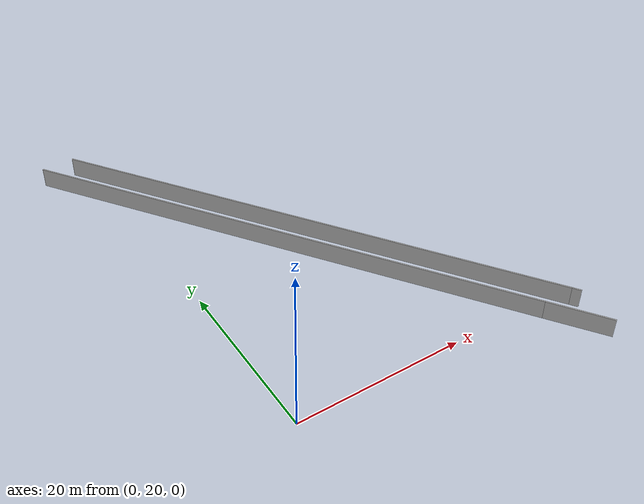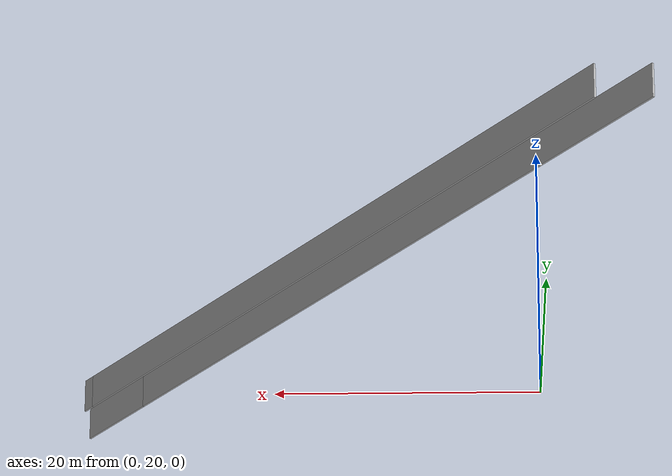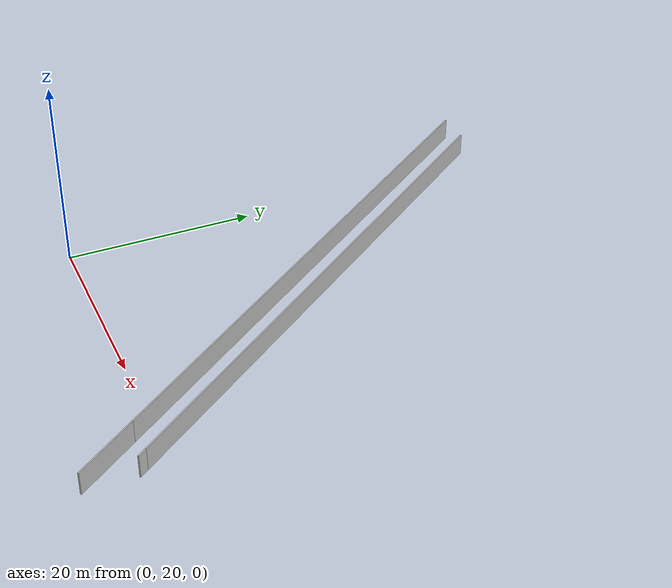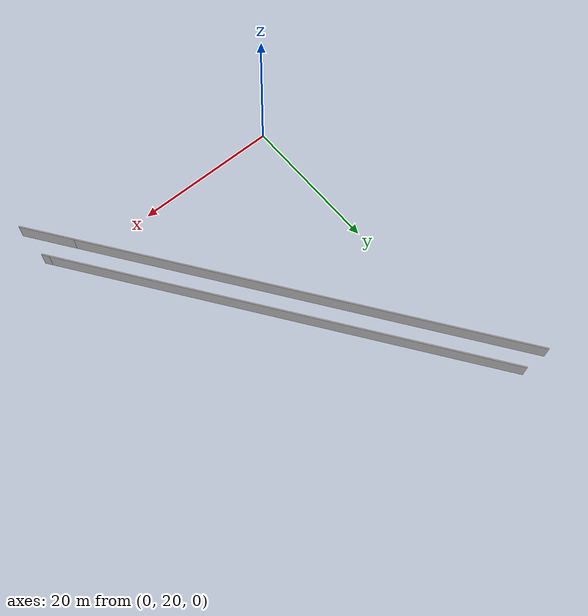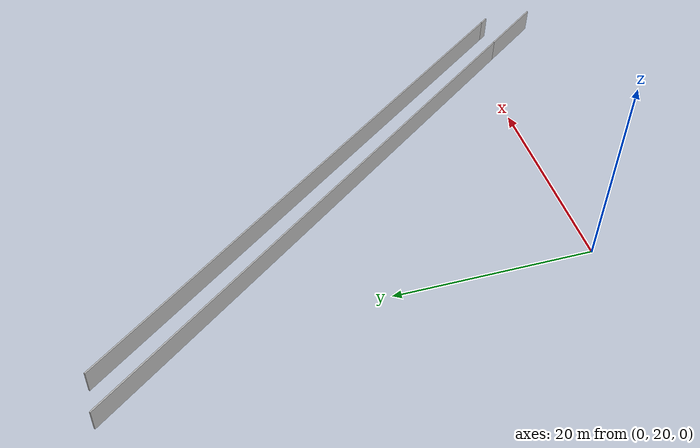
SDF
<?xml version="1.0" ?>
<sdf version="1.6">
  <model name="sps_4828">
    <pose frame="">0 0 0 0 -0 0</pose>
    <static>1</static>
    <self_collide>0</self_collide>
    <allow_auto_disable>0</allow_auto_disable>
    <link name="Wall166">
      <kinematic>0</kinematic>
      <gravity>1</gravity>
      <self_collide>0</self_collide>
      <collision name="collision">
        <geometry>
          <box>
            <size>7.57319 0.15 2.5</size>
          </box>
        </geometry>
        <pose frame="">0 0 0 0 -0 0</pose>
      </collision>
      <visual name="visual">
        <geometry>
          <box>
            <size>7.57319 0.15 2.5</size>
          </box>
        </geometry>
        <pose frame="">0 0 0 0 -0 0</pose>
        <cast_shadows>1</cast_shadows>
        <transparency>0.0</transparency>
      </visual>
      <pose frame="">32.2383 14.8336 1.25 0 -0 2.20088</pose>
    </link>
    <link name="Wall167">
      <kinematic>0</kinematic>
      <gravity>1</gravity>
      <self_collide>0</self_collide>
      <collision name="collision">
        <geometry>
          <box>
            <size>61.8829 0.15 2.5</size>
          </box>
        </geometry>
        <pose frame="">0 0 0 0 -0 0</pose>
      </collision>
      <visual name="visual">
        <geometry>
          <box>
            <size>61.8829 0.15 2.5</size>
          </box>
        </geometry>
        <pose frame="">0 0 0 0 -0 0</pose>
        <cast_shadows>1</cast_shadows>
        <transparency>0.0</transparency>
      </visual>
      <pose frame="">11.7761 42.8931 1.25 0 -0 2.20088</pose>
    </link>
    <link name="Wall399">
      <kinematic>0</kinematic>
      <gravity>1</gravity>
      <self_collide>0</self_collide>
      <collision name="collision">
        <geometry>
          <box>
            <size>1.06163 0.15 2.5</size>
          </box>
        </geometry>
        <pose frame="">0 0 0 0 -0 0</pose>
      </collision>
      <visual name="visual">
        <geometry>
          <box>
            <size>1.06163 0.15 2.5</size>
          </box>
        </geometry>
        <pose frame="">0 0 0 0 -0 0</pose>
        <cast_shadows>1</cast_shadows>
        <transparency>0.0</transparency>
      </visual>
      <pose frame="">34.1567 17.4642 1.25 0 -0 2.20088</pose>
    </link>
    <link name="Wall400">
      <kinematic>0</kinematic>
      <gravity>1</gravity>
      <self_collide>0</self_collide>
      <collision name="collision">
        <geometry>
          <box>
            <size>61.8829 0.15 2.5</size>
          </box>
        </geometry>
        <pose frame="">0 0 0 0 -0 0</pose>
      </collision>
      <visual name="visual">
        <geometry>
          <box>
            <size>61.8829 0.15 2.5</size>
          </box>
        </geometry>
        <pose frame="">0 0 0 0 -0 0</pose>
        <cast_shadows>1</cast_shadows>
        <transparency>0.0</transparency>
      </visual>
      <pose frame="">15.6128 42.8931 1.25 0 -0 2.20088</pose>
    </link>
  </model>
</sdf>
